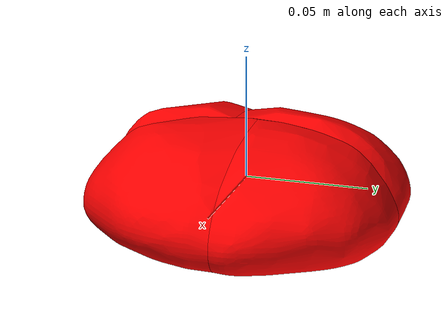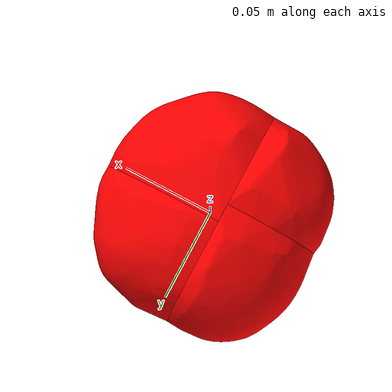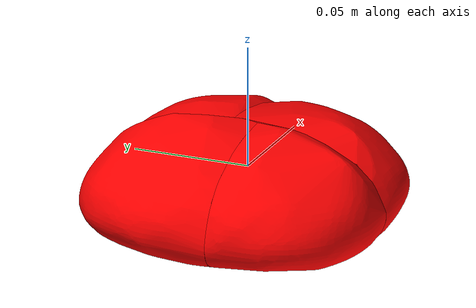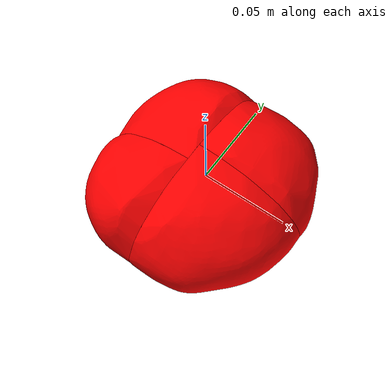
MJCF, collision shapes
<?xml version="1.0" ?>
<mujoco model="bread_roll_3">
	<compiler meshdir="bread_roll_3/meshes" texturedir="bread_roll_3/textures" angle="radian" autolimits="true" balanceinertia="true" boundmass="0.000001" boundinertia="0.000001"/>
	<default>
		<default class="visual">
			<geom contype="0" conaffinity="0"/>
		</default>
		<default class="collision">
			<geom rgba="1.0 0.0 0.0 0.0"/>
		</default>
	</default>
	<asset>
		<mesh name="BreadRoll3" file="obj/BreadRoll3.obj" scale="1.0 1.0 1.0"/>
		<mesh name="BreadRoll3_001" file="stl/BreadRoll3_001.stl" scale="1.0 1.0 1.0"/>
		<mesh name="BreadRoll3_002" file="stl/BreadRoll3_002.stl" scale="1.0 1.0 1.0"/>
		<mesh name="BreadRoll3_003" file="stl/BreadRoll3_003.stl" scale="1.0 1.0 1.0"/>
		<mesh name="BreadRoll3_004" file="stl/BreadRoll3_004.stl" scale="1.0 1.0 1.0"/>
		<material name="M_BreadRoll3" texture="T_BreadRoll3"/>
		<texture name="T_BreadRoll3" type="2d" file="T_BreadRoll3.png"/>
	</asset>
	<worldbody>
		<body name="bread_roll_3" pos="0.0 0.0 0.0" quat="1.0 0.0 0.0 0.0">
			<inertial mass="0.09935532510280609" pos="-0.0012706357520073652 3.2755782740423456e-05 -0.0035513173788785934" quat="0.737831711769104 0.001328349462710321 -0.010624047368764877 -0.6748998165130615" diaginertia="9.150032565230504e-05 9.983621566789225e-05 0.00016606596182100475"/>
			<geom name="BreadRoll3" type="mesh" pos="0.0 0.0 0.0" quat="1.0 0.0 0.0 0.0" mesh="BreadRoll3" material="M_BreadRoll3" class="visual"/>
			<geom name="BreadRoll3_001" type="mesh" pos="0.0 0.0 0.0" quat="1.0 0.0 0.0 0.0" mesh="BreadRoll3_001" class="collision"/>
			<geom name="BreadRoll3_002" type="mesh" pos="0.0 0.0 0.0" quat="1.0 0.0 0.0 0.0" mesh="BreadRoll3_002" class="collision"/>
			<geom name="BreadRoll3_003" type="mesh" pos="0.0 0.0 0.0" quat="1.0 0.0 0.0 0.0" mesh="BreadRoll3_003" class="collision"/>
			<geom name="BreadRoll3_004" type="mesh" pos="0.0 0.0 0.0" quat="1.0 0.0 0.0 0.0" mesh="BreadRoll3_004" class="collision"/>
		</body>
	</worldbody>
	<equality/>
</mujoco>
